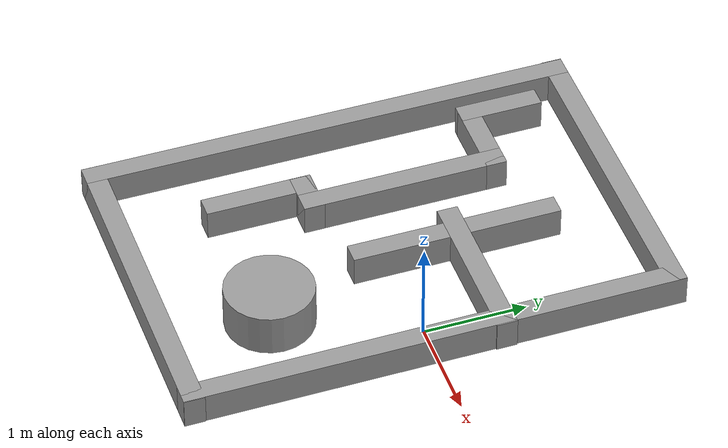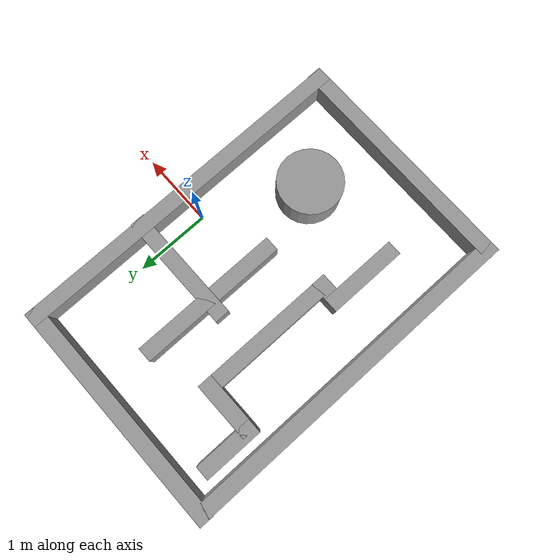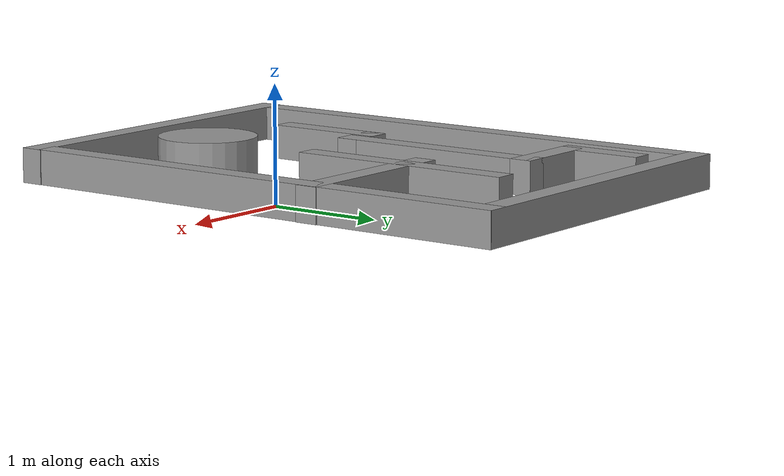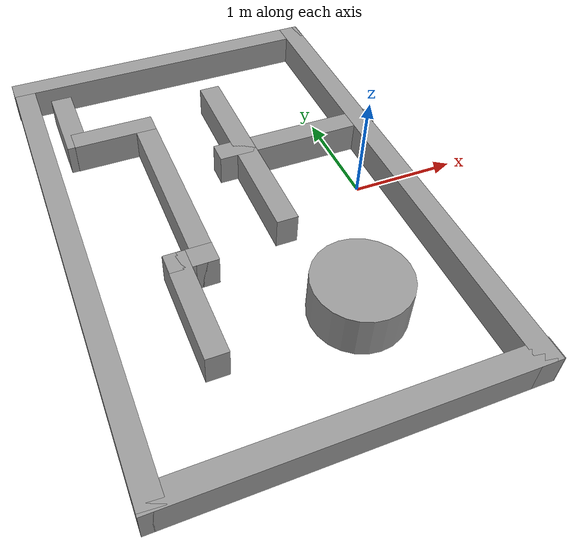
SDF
<?xml version='1.0'?>
<sdf version='1.6'>
  <model name='FinalMaze'>
    <link name='Wall_0'>
      <pose frame=''>-1.18759 -2.3 0 0 -0 0</pose>
      <self_collide>0</self_collide>
      <enable_wind>0</enable_wind>
      <kinematic>0</kinematic>
      <inertial>
        <inertia>
          <ixx>0</ixx>
          <ixy>0</ixy>
          <ixz>0</ixz>
          <iyy>0</iyy>
          <iyz>0</iyz>
          <izz>0</izz>
        </inertia>
        <mass>0</mass>
        <pose frame=''>0 0 0 0 -0 0</pose>
      </inertial>
      <visual name='Wall_0_Visual'>
        <pose frame=''>0 0 0.15 0 -0 0</pose>
        <geometry>
          <box>
            <size>3.22562 0.2 0.3</size>
          </box>
        </geometry>
        <material>
          <script>
            <uri>file://media/materials/scripts/gazebo.material</uri>
            <name>Gazebo/Grey</name>
          </script>
          <ambient>1 1 1 1</ambient>
        </material>
        <transparency>0</transparency>
        <cast_shadows>1</cast_shadows>
      </visual>
      <collision name='Wall_0_Collision'>
        <laser_retro>0</laser_retro>
        <max_contacts>10</max_contacts>
        <pose frame=''>0 0 0.15 0 -0 0</pose>
        <geometry>
          <box>
            <size>3.22562 0.2 0.3</size>
          </box>
        </geometry>
        <surface>
          <friction>
            <ode>
              <mu>1</mu>
              <mu2>1</mu2>
              <fdir1>0 0 0</fdir1>
              <slip1>0</slip1>
              <slip2>0</slip2>
            </ode>
            <torsional>
              <coefficient>1</coefficient>
              <patch_radius>0</patch_radius>
              <surface_radius>0</surface_radius>
              <use_patch_radius>1</use_patch_radius>
              <ode>
                <slip>0</slip>
              </ode>
            </torsional>
          </friction>
          <bounce>
            <restitution_coefficient>0</restitution_coefficient>
            <threshold>1e+06</threshold>
          </bounce>
          <contact>
            <collide_without_contact>0</collide_without_contact>
            <collide_without_contact_bitmask>1</collide_without_contact_bitmask>
            <collide_bitmask>1</collide_bitmask>
            <ode>
              <soft_cfm>0</soft_cfm>
              <soft_erp>0.2</soft_erp>
              <kp>1e+13</kp>
              <kd>1</kd>
              <max_vel>0.01</max_vel>
              <min_depth>0</min_depth>
            </ode>
            <bullet>
              <split_impulse>1</split_impulse>
              <split_impulse_penetration_threshold>-0.01</split_impulse_penetration_threshold>
              <soft_cfm>0</soft_cfm>
              <soft_erp>0.2</soft_erp>
              <kp>1e+13</kp>
              <kd>1</kd>
            </bullet>
          </contact>
        </surface>
      </collision>
    </link>
    <link name='Wall_23'>
      <pose frame=''>-0.899999 0.624057 0 0 -0 1.5708</pose>
      <self_collide>0</self_collide>
      <enable_wind>0</enable_wind>
      <kinematic>0</kinematic>
      <inertial>
        <inertia>
          <ixx>0</ixx>
          <ixy>0</ixy>
          <ixz>0</ixz>
          <iyy>0</iyy>
          <iyz>0</iyz>
          <izz>0</izz>
        </inertia>
        <mass>0</mass>
        <pose frame=''>0 0 0 0 -0 0</pose>
      </inertial>
      <visual name='Wall_23_Visual'>
        <pose frame=''>0 0 0.15 0 -0 0</pose>
        <geometry>
          <box>
            <size>2.02684 0.2 0.3</size>
          </box>
        </geometry>
        <material>
          <script>
            <uri>file://media/materials/scripts/gazebo.material</uri>
            <name>Gazebo/Grey</name>
          </script>
          <ambient>1 1 1 1</ambient>
        </material>
        <transparency>0</transparency>
        <cast_shadows>1</cast_shadows>
      </visual>
      <collision name='Wall_23_Collision'>
        <laser_retro>0</laser_retro>
        <max_contacts>10</max_contacts>
        <pose frame=''>0 0 0.15 0 -0 0</pose>
        <geometry>
          <box>
            <size>2.02684 0.2 0.3</size>
          </box>
        </geometry>
        <surface>
          <friction>
            <ode>
              <mu>1</mu>
              <mu2>1</mu2>
              <fdir1>0 0 0</fdir1>
              <slip1>0</slip1>
              <slip2>0</slip2>
            </ode>
            <torsional>
              <coefficient>1</coefficient>
              <patch_radius>0</patch_radius>
              <surface_radius>0</surface_radius>
              <use_patch_radius>1</use_patch_radius>
              <ode>
                <slip>0</slip>
              </ode>
            </torsional>
          </friction>
          <bounce>
            <restitution_coefficient>0</restitution_coefficient>
            <threshold>1e+06</threshold>
          </bounce>
          <contact>
            <collide_without_contact>0</collide_without_contact>
            <collide_without_contact_bitmask>1</collide_without_contact_bitmask>
            <collide_bitmask>1</collide_bitmask>
            <ode>
              <soft_cfm>0</soft_cfm>
              <soft_erp>0.2</soft_erp>
              <kp>1e+13</kp>
              <kd>1</kd>
              <max_vel>0.01</max_vel>
              <min_depth>0</min_depth>
            </ode>
            <bullet>
              <split_impulse>1</split_impulse>
              <split_impulse_penetration_threshold>-0.01</split_impulse_penetration_threshold>
              <soft_cfm>0</soft_cfm>
              <soft_erp>0.2</soft_erp>
              <kp>1e+13</kp>
              <kd>1</kd>
            </bullet>
          </contact>
        </surface>
      </collision>
    </link>
    <link name='Wall_24'>
      <pose frame=''>-0.37055 0.648135 0 0 -0 0</pose>
      <self_collide>0</self_collide>
      <enable_wind>0</enable_wind>
      <kinematic>0</kinematic>
      <visual name='Wall_24_Visual'>
        <pose frame=''>0 0 0.15 0 -0 0</pose>
        <geometry>
          <box>
            <size>1.6 0.2 0.3</size>
          </box>
        </geometry>
        <material>
          <script>
            <uri>file://media/materials/scripts/gazebo.material</uri>
            <name>Gazebo/Grey</name>
          </script>
          <ambient>1 1 1 1</ambient>
        </material>
        <transparency>0</transparency>
        <cast_shadows>1</cast_shadows>
      </visual>
      <collision name='Wall_24_Collision'>
        <laser_retro>0</laser_retro>
        <max_contacts>10</max_contacts>
        <pose frame=''>0 0 0.15 0 -0 0</pose>
        <geometry>
          <box>
            <size>1.6 0.2 0.3</size>
          </box>
        </geometry>
        <surface>
          <friction>
            <ode>
              <mu>1</mu>
              <mu2>1</mu2>
              <fdir1>0 0 0</fdir1>
              <slip1>0</slip1>
              <slip2>0</slip2>
            </ode>
            <torsional>
              <coefficient>1</coefficient>
              <patch_radius>0</patch_radius>
              <surface_radius>0</surface_radius>
              <use_patch_radius>1</use_patch_radius>
              <ode>
                <slip>0</slip>
              </ode>
            </torsional>
          </friction>
          <bounce>
            <restitution_coefficient>0</restitution_coefficient>
            <threshold>1e+06</threshold>
          </bounce>
          <contact>
            <collide_without_contact>0</collide_without_contact>
            <collide_without_contact_bitmask>1</collide_without_contact_bitmask>
            <collide_bitmask>1</collide_bitmask>
            <ode>
              <soft_cfm>0</soft_cfm>
              <soft_erp>0.2</soft_erp>
              <kp>1e+13</kp>
              <kd>1</kd>
              <max_vel>0.01</max_vel>
              <min_depth>0</min_depth>
            </ode>
            <bullet>
              <split_impulse>1</split_impulse>
              <split_impulse_penetration_threshold>-0.01</split_impulse_penetration_threshold>
              <soft_cfm>0</soft_cfm>
              <soft_erp>0.2</soft_erp>
              <kp>1e+13</kp>
              <kd>1</kd>
            </bullet>
          </contact>
        </surface>
      </collision>
    </link>
    <link name='Wall_27'>
      <pose frame=''>-1.81438 -0.5 0 0 -0 0</pose>
      <self_collide>0</self_collide>
      <enable_wind>0</enable_wind>
      <kinematic>0</kinematic>
      <inertial>
        <inertia>
          <ixx>0</ixx>
          <ixy>0</ixy>
          <ixz>0</ixz>
          <iyy>0</iyy>
          <iyz>0</iyz>
          <izz>0</izz>
        </inertia>
        <mass>0</mass>
        <pose frame=''>0 0 0 0 -0 0</pose>
      </inertial>
      <visual name='Wall_27_Visual'>
        <pose frame=''>0 0 0.15 0 -0 0</pose>
        <geometry>
          <box>
            <size>0.431142 0.2 0.3</size>
          </box>
        </geometry>
        <material>
          <script>
            <uri>file://media/materials/scripts/gazebo.material</uri>
            <name>Gazebo/Grey</name>
          </script>
          <ambient>1 1 1 1</ambient>
        </material>
        <transparency>0</transparency>
        <cast_shadows>1</cast_shadows>
      </visual>
      <collision name='Wall_27_Collision'>
        <laser_retro>0</laser_retro>
        <max_contacts>10</max_contacts>
        <pose frame=''>0 0 0.15 0 -0 0</pose>
        <geometry>
          <box>
            <size>0.431142 0.2 0.3</size>
          </box>
        </geometry>
        <surface>
          <friction>
            <ode>
              <mu>1</mu>
              <mu2>1</mu2>
              <fdir1>0 0 0</fdir1>
              <slip1>0</slip1>
              <slip2>0</slip2>
            </ode>
            <torsional>
              <coefficient>1</coefficient>
              <patch_radius>0</patch_radius>
              <surface_radius>0</surface_radius>
              <use_patch_radius>1</use_patch_radius>
              <ode>
                <slip>0</slip>
              </ode>
            </torsional>
          </friction>
          <bounce>
            <restitution_coefficient>0</restitution_coefficient>
            <threshold>1e+06</threshold>
          </bounce>
          <contact>
            <collide_without_contact>0</collide_without_contact>
            <collide_without_contact_bitmask>1</collide_without_contact_bitmask>
            <collide_bitmask>1</collide_bitmask>
            <ode>
              <soft_cfm>0</soft_cfm>
              <soft_erp>0.2</soft_erp>
              <kp>1e+13</kp>
              <kd>1</kd>
              <max_vel>0.01</max_vel>
              <min_depth>0</min_depth>
            </ode>
            <bullet>
              <split_impulse>1</split_impulse>
              <split_impulse_penetration_threshold>-0.01</split_impulse_penetration_threshold>
              <soft_cfm>0</soft_cfm>
              <soft_erp>0.2</soft_erp>
              <kp>1e+13</kp>
              <kd>1</kd>
            </bullet>
          </contact>
        </surface>
      </collision>
    </link>
    <link name='Wall_28'>
      <pose frame=''>-1.7 0.4 0 0 -0 1.5708</pose>
      <self_collide>0</self_collide>
      <enable_wind>0</enable_wind>
      <kinematic>0</kinematic>
      <visual name='Wall_28_Visual'>
        <pose frame=''>0 0 0.15 0 -0 0</pose>
        <geometry>
          <box>
            <size>2 0.2 0.3</size>
          </box>
        </geometry>
        <material>
          <script>
            <uri>file://media/materials/scripts/gazebo.material</uri>
            <name>Gazebo/Grey</name>
          </script>
          <ambient>1 1 1 1</ambient>
        </material>
        <transparency>0</transparency>
        <cast_shadows>1</cast_shadows>
      </visual>
      <collision name='Wall_28_Collision'>
        <laser_retro>0</laser_retro>
        <max_contacts>10</max_contacts>
        <pose frame=''>0 0 0.15 0 -0 0</pose>
        <geometry>
          <box>
            <size>2 0.2 0.3</size>
          </box>
        </geometry>
        <surface>
          <friction>
            <ode>
              <mu>1</mu>
              <mu2>1</mu2>
              <fdir1>0 0 0</fdir1>
              <slip1>0</slip1>
              <slip2>0</slip2>
            </ode>
            <torsional>
              <coefficient>1</coefficient>
              <patch_radius>0</patch_radius>
              <surface_radius>0</surface_radius>
              <use_patch_radius>1</use_patch_radius>
              <ode>
                <slip>0</slip>
              </ode>
            </torsional>
          </friction>
          <bounce>
            <restitution_coefficient>0</restitution_coefficient>
            <threshold>1e+06</threshold>
          </bounce>
          <contact>
            <collide_without_contact>0</collide_without_contact>
            <collide_without_contact_bitmask>1</collide_without_contact_bitmask>
            <collide_bitmask>1</collide_bitmask>
            <ode>
              <soft_cfm>0</soft_cfm>
              <soft_erp>0.2</soft_erp>
              <kp>1e+13</kp>
              <kd>1</kd>
              <max_vel>0.01</max_vel>
              <min_depth>0</min_depth>
            </ode>
            <bullet>
              <split_impulse>1</split_impulse>
              <split_impulse_penetration_threshold>-0.01</split_impulse_penetration_threshold>
              <soft_cfm>0</soft_cfm>
              <soft_erp>0.2</soft_erp>
              <kp>1e+13</kp>
              <kd>1</kd>
            </bullet>
          </contact>
        </surface>
      </collision>
    </link>
    <link name='Wall_29'>
      <pose frame=''>-2 1.3 0 0 -0 3.14159</pose>
      <self_collide>0</self_collide>
      <enable_wind>0</enable_wind>
      <kinematic>0</kinematic>
      <visual name='Wall_29_Visual'>
        <pose frame=''>0 0 0.15 0 -0 0</pose>
        <geometry>
          <box>
            <size>0.8 0.2 0.3</size>
          </box>
        </geometry>
        <material>
          <script>
            <uri>file://media/materials/scripts/gazebo.material</uri>
            <name>Gazebo/Grey</name>
          </script>
          <ambient>1 1 1 1</ambient>
        </material>
        <transparency>0</transparency>
        <cast_shadows>1</cast_shadows>
      </visual>
      <collision name='Wall_29_Collision'>
        <laser_retro>0</laser_retro>
        <max_contacts>10</max_contacts>
        <pose frame=''>0 0 0.15 0 -0 0</pose>
        <geometry>
          <box>
            <size>0.8 0.2 0.3</size>
          </box>
        </geometry>
        <surface>
          <friction>
            <ode>
              <mu>1</mu>
              <mu2>1</mu2>
              <fdir1>0 0 0</fdir1>
              <slip1>0</slip1>
              <slip2>0</slip2>
            </ode>
            <torsional>
              <coefficient>1</coefficient>
              <patch_radius>0</patch_radius>
              <surface_radius>0</surface_radius>
              <use_patch_radius>1</use_patch_radius>
              <ode>
                <slip>0</slip>
              </ode>
            </torsional>
          </friction>
          <bounce>
            <restitution_coefficient>0</restitution_coefficient>
            <threshold>1e+06</threshold>
          </bounce>
          <contact>
            <collide_without_contact>0</collide_without_contact>
            <collide_without_contact_bitmask>1</collide_without_contact_bitmask>
            <collide_bitmask>1</collide_bitmask>
            <ode>
              <soft_cfm>0</soft_cfm>
              <soft_erp>0.2</soft_erp>
              <kp>1e+13</kp>
              <kd>1</kd>
              <max_vel>0.01</max_vel>
              <min_depth>0</min_depth>
            </ode>
            <bullet>
              <split_impulse>1</split_impulse>
              <split_impulse_penetration_threshold>-0.01</split_impulse_penetration_threshold>
              <soft_cfm>0</soft_cfm>
              <soft_erp>0.2</soft_erp>
              <kp>1e+13</kp>
              <kd>1</kd>
            </bullet>
          </contact>
        </surface>
      </collision>
    </link>
    <link name='Wall_3'>
      <pose frame=''>0.318065 -9e-06 0 0 -0 1.5708</pose>
      <self_collide>0</self_collide>
      <enable_wind>0</enable_wind>
      <kinematic>0</kinematic>
      <visual name='Wall_3_Visual'>
        <pose frame=''>0 0 0.15 0 -0 0</pose>
        <geometry>
          <box>
            <size>4.8 0.2 0.3</size>
          </box>
        </geometry>
        <material>
          <script>
            <uri>file://media/materials/scripts/gazebo.material</uri>
            <name>Gazebo/Grey</name>
          </script>
          <ambient>1 1 1 1</ambient>
        </material>
        <transparency>0</transparency>
        <cast_shadows>1</cast_shadows>
      </visual>
      <collision name='Wall_3_Collision'>
        <laser_retro>0</laser_retro>
        <max_contacts>10</max_contacts>
        <pose frame=''>0 0 0.15 0 -0 0</pose>
        <geometry>
          <box>
            <size>4.8 0.2 0.3</size>
          </box>
        </geometry>
        <surface>
          <friction>
            <ode>
              <mu>1</mu>
              <mu2>1</mu2>
              <fdir1>0 0 0</fdir1>
              <slip1>0</slip1>
              <slip2>0</slip2>
            </ode>
            <torsional>
              <coefficient>1</coefficient>
              <patch_radius>0</patch_radius>
              <surface_radius>0</surface_radius>
              <use_patch_radius>1</use_patch_radius>
              <ode>
                <slip>0</slip>
              </ode>
            </torsional>
          </friction>
          <bounce>
            <restitution_coefficient>0</restitution_coefficient>
            <threshold>1e+06</threshold>
          </bounce>
          <contact>
            <collide_without_contact>0</collide_without_contact>
            <collide_without_contact_bitmask>1</collide_without_contact_bitmask>
            <collide_bitmask>1</collide_bitmask>
            <ode>
              <soft_cfm>0</soft_cfm>
              <soft_erp>0.2</soft_erp>
              <kp>1e+13</kp>
              <kd>1</kd>
              <max_vel>0.01</max_vel>
              <min_depth>0</min_depth>
            </ode>
            <bullet>
              <split_impulse>1</split_impulse>
              <split_impulse_penetration_threshold>-0.01</split_impulse_penetration_threshold>
              <soft_cfm>0</soft_cfm>
              <soft_erp>0.2</soft_erp>
              <kp>1e+13</kp>
              <kd>1</kd>
            </bullet>
          </contact>
        </surface>
      </collision>
    </link>
    <link name='Wall_30'>
      <pose frame=''>-2.37101 1.60269 0 0 -0 1.5708</pose>
      <self_collide>0</self_collide>
      <enable_wind>0</enable_wind>
      <kinematic>0</kinematic>
      <visual name='Wall_30_Visual'>
        <pose frame=''>0 0 0.15 0 -0 0</pose>
        <geometry>
          <box>
            <size>0.8 0.2 0.3</size>
          </box>
        </geometry>
        <material>
          <script>
            <uri>file://media/materials/scripts/gazebo.material</uri>
            <name>Gazebo/Grey</name>
          </script>
          <ambient>1 1 1 1</ambient>
        </material>
        <transparency>0</transparency>
        <cast_shadows>1</cast_shadows>
      </visual>
      <collision name='Wall_30_Collision'>
        <laser_retro>0</laser_retro>
        <max_contacts>10</max_contacts>
        <pose frame=''>0 0 0.15 0 -0 0</pose>
        <geometry>
          <box>
            <size>0.8 0.2 0.3</size>
          </box>
        </geometry>
        <surface>
          <friction>
            <ode>
              <mu>1</mu>
              <mu2>1</mu2>
              <fdir1>0 0 0</fdir1>
              <slip1>0</slip1>
              <slip2>0</slip2>
            </ode>
            <torsional>
              <coefficient>1</coefficient>
              <patch_radius>0</patch_radius>
              <surface_radius>0</surface_radius>
              <use_patch_radius>1</use_patch_radius>
              <ode>
                <slip>0</slip>
              </ode>
            </torsional>
          </friction>
          <bounce>
            <restitution_coefficient>0</restitution_coefficient>
            <threshold>1e+06</threshold>
          </bounce>
          <contact>
            <collide_without_contact>0</collide_without_contact>
            <collide_without_contact_bitmask>1</collide_without_contact_bitmask>
            <collide_bitmask>1</collide_bitmask>
            <ode>
              <soft_cfm>0</soft_cfm>
              <soft_erp>0.2</soft_erp>
              <kp>1e+13</kp>
              <kd>1</kd>
              <max_vel>0.01</max_vel>
              <min_depth>0</min_depth>
            </ode>
            <bullet>
              <split_impulse>1</split_impulse>
              <split_impulse_penetration_threshold>-0.01</split_impulse_penetration_threshold>
              <soft_cfm>0</soft_cfm>
              <soft_erp>0.2</soft_erp>
              <kp>1e+13</kp>
              <kd>1</kd>
            </bullet>
          </contact>
        </surface>
      </collision>
    </link>
    <link name='Wall_34'>
      <pose frame=''>-1.93327 -0.936275 0 0 0 -1.5708</pose>
      <self_collide>0</self_collide>
      <enable_wind>0</enable_wind>
      <kinematic>0</kinematic>
      <inertial>
        <inertia>
          <ixx>0</ixx>
          <ixy>0</ixy>
          <ixz>0</ixz>
          <iyy>0</iyy>
          <iyz>0</iyz>
          <izz>0</izz>
        </inertia>
        <mass>0</mass>
        <pose frame=''>0 0 0 0 -0 0</pose>
      </inertial>
      <visual name='Wall_34_Visual'>
        <pose frame=''>0 0 0.15 0 -0 0</pose>
        <geometry>
          <box>
            <size>1.06619 0.2 0.3</size>
          </box>
        </geometry>
        <material>
          <script>
            <uri>file://media/materials/scripts/gazebo.material</uri>
            <name>Gazebo/Grey</name>
          </script>
          <ambient>1 1 1 1</ambient>
        </material>
        <transparency>0</transparency>
        <cast_shadows>1</cast_shadows>
      </visual>
      <collision name='Wall_34_Collision'>
        <laser_retro>0</laser_retro>
        <max_contacts>10</max_contacts>
        <pose frame=''>0 0 0.15 0 -0 0</pose>
        <geometry>
          <box>
            <size>1.06619 0.2 0.3</size>
          </box>
        </geometry>
        <surface>
          <friction>
            <ode>
              <mu>1</mu>
              <mu2>1</mu2>
              <fdir1>0 0 0</fdir1>
              <slip1>0</slip1>
              <slip2>0</slip2>
            </ode>
            <torsional>
              <coefficient>1</coefficient>
              <patch_radius>0</patch_radius>
              <surface_radius>0</surface_radius>
              <use_patch_radius>1</use_patch_radius>
              <ode>
                <slip>0</slip>
              </ode>
            </torsional>
          </friction>
          <bounce>
            <restitution_coefficient>0</restitution_coefficient>
            <threshold>1e+06</threshold>
          </bounce>
          <contact>
            <collide_without_contact>0</collide_without_contact>
            <collide_without_contact_bitmask>1</collide_without_contact_bitmask>
            <collide_bitmask>1</collide_bitmask>
            <ode>
              <soft_cfm>0</soft_cfm>
              <soft_erp>0.2</soft_erp>
              <kp>1e+13</kp>
              <kd>1</kd>
              <max_vel>0.01</max_vel>
              <min_depth>0</min_depth>
            </ode>
            <bullet>
              <split_impulse>1</split_impulse>
              <split_impulse_penetration_threshold>-0.01</split_impulse_penetration_threshold>
              <soft_cfm>0</soft_cfm>
              <soft_erp>0.2</soft_erp>
              <kp>1e+13</kp>
              <kd>1</kd>
            </bullet>
          </contact>
        </surface>
      </collision>
    </link>
    <link name='Wall_5'>
      <pose frame=''>-1.19576 2.3 0 0 -0 3.14159</pose>
      <self_collide>0</self_collide>
      <enable_wind>0</enable_wind>
      <kinematic>0</kinematic>
      <inertial>
        <inertia>
          <ixx>0</ixx>
          <ixy>0</ixy>
          <ixz>0</ixz>
          <iyy>0</iyy>
          <iyz>0</iyz>
          <izz>0</izz>
        </inertia>
        <mass>0</mass>
        <pose frame=''>0 0 0 0 -0 0</pose>
      </inertial>
      <visual name='Wall_5_Visual'>
        <pose frame=''>0 0 0.15 0 -0 0</pose>
        <geometry>
          <box>
            <size>3.21847 0.2 0.3</size>
          </box>
        </geometry>
        <material>
          <script>
            <uri>file://media/materials/scripts/gazebo.material</uri>
            <name>Gazebo/Grey</name>
          </script>
          <ambient>1 1 1 1</ambient>
        </material>
        <transparency>0</transparency>
        <cast_shadows>1</cast_shadows>
      </visual>
      <collision name='Wall_5_Collision'>
        <laser_retro>0</laser_retro>
        <max_contacts>10</max_contacts>
        <pose frame=''>0 0 0.15 0 -0 0</pose>
        <geometry>
          <box>
            <size>3.21847 0.2 0.3</size>
          </box>
        </geometry>
        <surface>
          <friction>
            <ode>
              <mu>1</mu>
              <mu2>1</mu2>
              <fdir1>0 0 0</fdir1>
              <slip1>0</slip1>
              <slip2>0</slip2>
            </ode>
            <torsional>
              <coefficient>1</coefficient>
              <patch_radius>0</patch_radius>
              <surface_radius>0</surface_radius>
              <use_patch_radius>1</use_patch_radius>
              <ode>
                <slip>0</slip>
              </ode>
            </torsional>
          </friction>
          <bounce>
            <restitution_coefficient>0</restitution_coefficient>
            <threshold>1e+06</threshold>
          </bounce>
          <contact>
            <collide_without_contact>0</collide_without_contact>
            <collide_without_contact_bitmask>1</collide_without_contact_bitmask>
            <collide_bitmask>1</collide_bitmask>
            <ode>
              <soft_cfm>0</soft_cfm>
              <soft_erp>0.2</soft_erp>
              <kp>1e+13</kp>
              <kd>1</kd>
              <max_vel>0.01</max_vel>
              <min_depth>0</min_depth>
            </ode>
            <bullet>
              <split_impulse>1</split_impulse>
              <split_impulse_penetration_threshold>-0.01</split_impulse_penetration_threshold>
              <soft_cfm>0</soft_cfm>
              <soft_erp>0.2</soft_erp>
              <kp>1e+13</kp>
              <kd>1</kd>
            </bullet>
          </contact>
        </surface>
      </collision>
    </link>
    <link name='Wall_7'>
      <pose frame=''>-2.7 0 0 0 -0 1.5708</pose>
      <self_collide>0</self_collide>
      <enable_wind>0</enable_wind>
      <kinematic>0</kinematic>
      <gravity>1</gravity>
      <inertial>
        <mass>1</mass>
        <pose frame=''>0 0 0 0 -0 0</pose>
        <inertia>
          <ixx>1</ixx>
          <ixy>0</ixy>
          <ixz>0</ixz>
          <iyy>1</iyy>
          <iyz>0</iyz>
          <izz>1</izz>
        </inertia>
      </inertial>
      <visual name='Wall_7_Visual'>
        <pose frame=''>0 0 0.15 0 -0 0</pose>
        <geometry>
          <box>
            <size>4.8 0.2 0.3</size>
          </box>
        </geometry>
        <material>
          <script>
            <uri>file://media/materials/scripts/gazebo.material</uri>
            <name>Gazebo/Grey</name>
          </script>
          <ambient>1 1 1 1</ambient>
          <shader type='vertex'>
            <normal_map>__default__</normal_map>
          </shader>
        </material>
        <transparency>0</transparency>
        <cast_shadows>1</cast_shadows>
      </visual>
      <collision name='Wall_7_Collision'>
        <laser_retro>0</laser_retro>
        <max_contacts>10</max_contacts>
        <pose frame=''>0 0 0.15 0 -0 0</pose>
        <geometry>
          <box>
            <size>4.8 0.2 0.3</size>
          </box>
        </geometry>
        <surface>
          <friction>
            <ode>
              <mu>1</mu>
              <mu2>1</mu2>
              <fdir1>0 0 0</fdir1>
              <slip1>0</slip1>
              <slip2>0</slip2>
            </ode>
            <torsional>
              <coefficient>1</coefficient>
              <patch_radius>0</patch_radius>
              <surface_radius>0</surface_radius>
              <use_patch_radius>1</use_patch_radius>
              <ode>
                <slip>0</slip>
              </ode>
            </torsional>
          </friction>
          <bounce>
            <restitution_coefficient>0</restitution_coefficient>
            <threshold>1e+06</threshold>
          </bounce>
          <contact>
            <collide_without_contact>0</collide_without_contact>
            <collide_without_contact_bitmask>1</collide_without_contact_bitmask>
            <collide_bitmask>1</collide_bitmask>
            <ode>
              <soft_cfm>0</soft_cfm>
              <soft_erp>0.2</soft_erp>
              <kp>1e+13</kp>
              <kd>1</kd>
              <max_vel>0.01</max_vel>
              <min_depth>0</min_depth>
            </ode>
            <bullet>
              <split_impulse>1</split_impulse>
              <split_impulse_penetration_threshold>-0.01</split_impulse_penetration_threshold>
              <soft_cfm>0</soft_cfm>
              <soft_erp>0.2</soft_erp>
              <kp>1e+13</kp>
              <kd>1</kd>
            </bullet>
          </contact>
        </surface>
      </collision>
    </link>
    <link name='link_0'>
      <inertial>
        <mass>0.302688</mass>
        <inertia>
          <ixx>0.0181023</ixx>
          <ixy>0</ixy>
          <ixz>0</ixz>
          <iyy>0.0181023</iyy>
          <iyz>0</iyz>
          <izz>0.0273744</izz>
        </inertia>
        <pose frame=''>0 0 0 0 -0 0</pose>
      </inertial>
      <pose frame=''>-0.643371 -1.25479 0.169205 0 -0 0</pose>
      <self_collide>0</self_collide>
      <enable_wind>0</enable_wind>
      <kinematic>0</kinematic>
      <gravity>1</gravity>
      <visual name='visual'>
        <pose frame=''>0 0 0 0 -0 0</pose>
        <geometry>
          <cylinder>
            <radius>0.425295</radius>
            <length>0.418374</length>
          </cylinder>
        </geometry>
        <material>
          <lighting>1</lighting>
          <script>
            <uri>file://media/materials/scripts/gazebo.material</uri>
            <name>Gazebo/Grey</name>
          </script>
          <shader type='vertex'>
            <normal_map>__default__</normal_map>
          </shader>
          <ambient>1 1 1 1</ambient>
          <diffuse>0.7 0.7 0.7 1</diffuse>
          <specular>0.01 0.01 0.01 1</specular>
          <emissive>0 0 0 1</emissive>
        </material>
        <transparency>0</transparency>
        <cast_shadows>1</cast_shadows>
      </visual>
      <collision name='collision'>
        <laser_retro>0</laser_retro>
        <max_contacts>10</max_contacts>
        <pose frame=''>0 0 0 0 -0 0</pose>
        <geometry>
          <cylinder>
            <radius>0.425295</radius>
            <length>0.418374</length>
          </cylinder>
        </geometry>
        <surface>
          <friction>
            <ode>
              <mu>1</mu>
              <mu2>1</mu2>
              <fdir1>0 0 0</fdir1>
              <slip1>0</slip1>
              <slip2>0</slip2>
            </ode>
            <torsional>
              <coefficient>1</coefficient>
              <patch_radius>0</patch_radius>
              <surface_radius>0</surface_radius>
              <use_patch_radius>1</use_patch_radius>
              <ode>
                <slip>0</slip>
              </ode>
            </torsional>
          </friction>
          <bounce>
            <restitution_coefficient>0</restitution_coefficient>
            <threshold>1e+06</threshold>
          </bounce>
          <contact>
            <collide_without_contact>0</collide_without_contact>
            <collide_without_contact_bitmask>1</collide_without_contact_bitmask>
            <collide_bitmask>1</collide_bitmask>
            <ode>
              <soft_cfm>0</soft_cfm>
              <soft_erp>0.2</soft_erp>
              <kp>1e+13</kp>
              <kd>1</kd>
              <max_vel>0.01</max_vel>
              <min_depth>0</min_depth>
            </ode>
            <bullet>
              <split_impulse>1</split_impulse>
              <split_impulse_penetration_threshold>-0.01</split_impulse_penetration_threshold>
              <soft_cfm>0</soft_cfm>
              <soft_erp>0.2</soft_erp>
              <kp>1e+13</kp>
              <kd>1</kd>
            </bullet>
          </contact>
        </surface>
      </collision>
    </link>
    <static>1</static>
    <allow_auto_disable>1</allow_auto_disable>
  </model>
</sdf>
